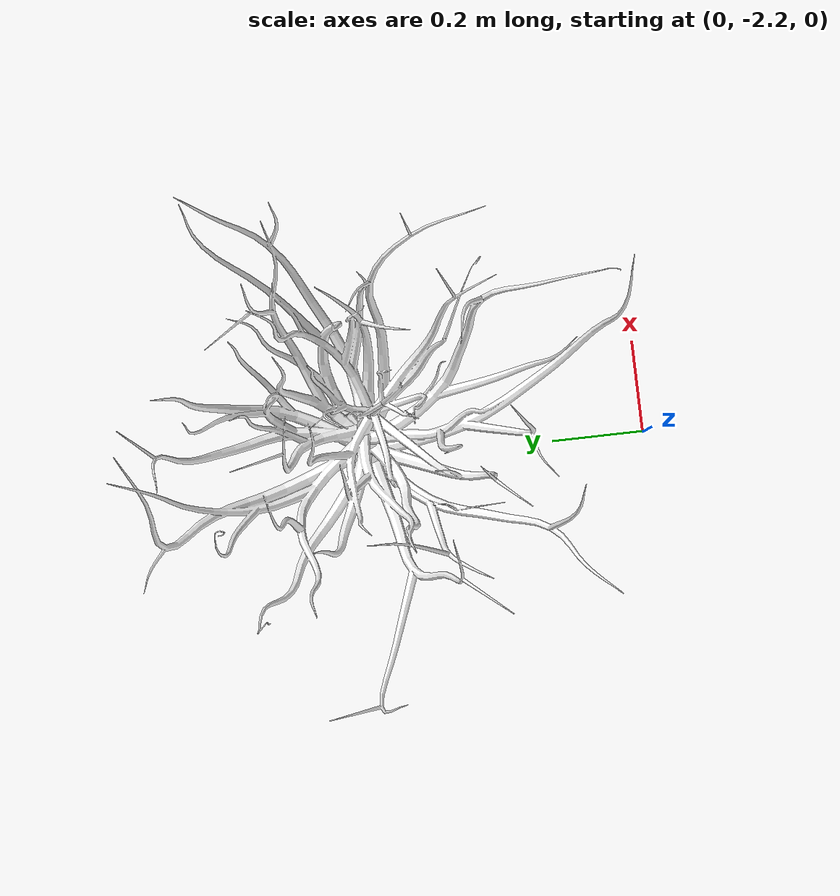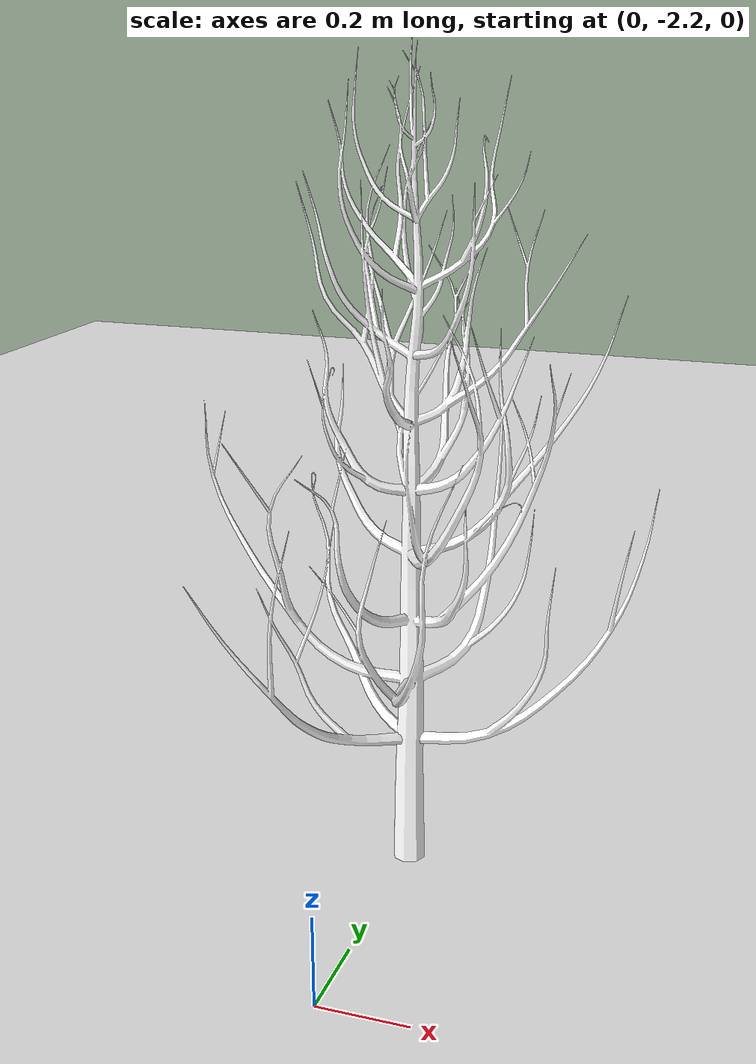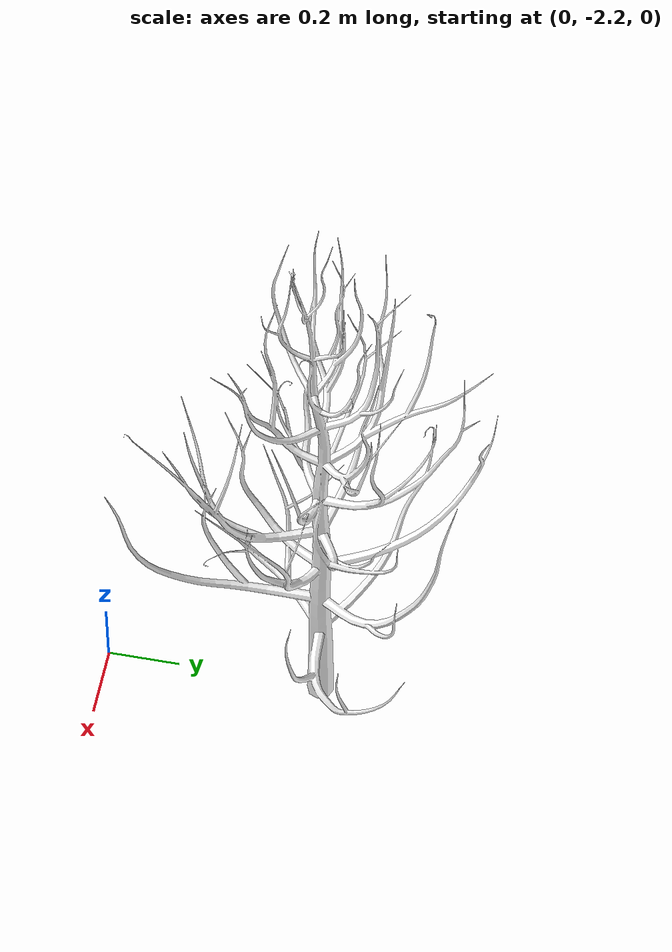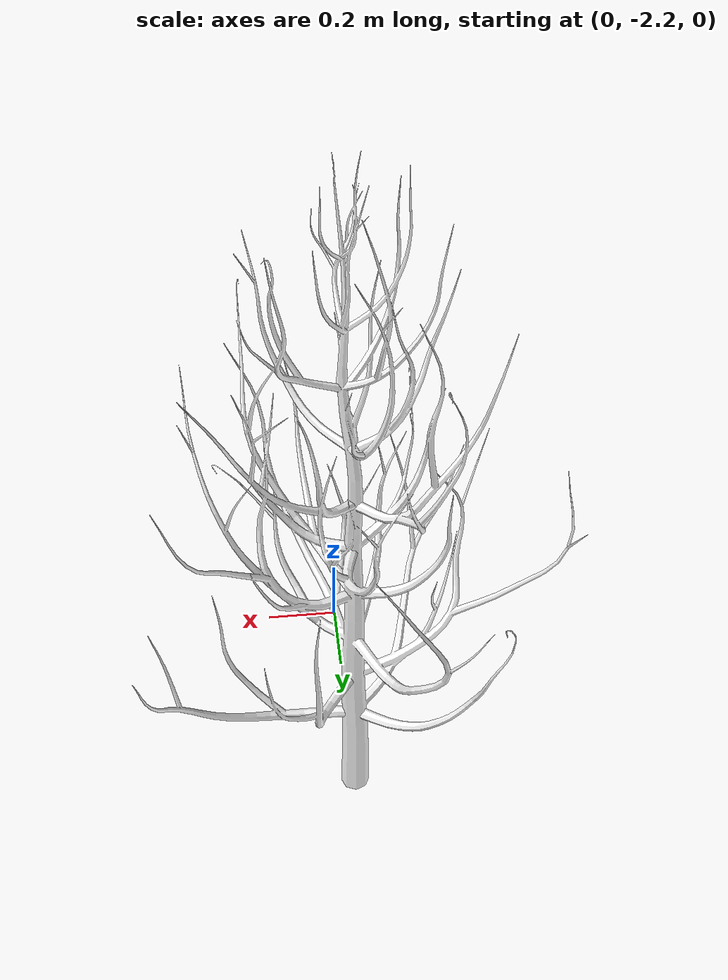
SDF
<?xml version="1.0"?>
<sdf version="1.7">
    <world name="apple_tree_2">

        <plugin filename="gz-sim-physics-system" name="gz::sim::systems::Physics"/>
        <plugin filename="gz-sim-user-commands-system" name="gz::sim::systems::UserCommands"/>
        <plugin filename="gz-sim-scene-broadcaster-system" name="gz::sim::systems::SceneBroadcaster"/>
        <plugin filename="gz-sim-contact-system" name="gz::sim::systems::Contact"/>
        <plugin filename="gz-sim-sensors-system" name="gz::sim::systems::Sensors">
            <render_engine>ogre2</render_engine>
        </plugin>

        <physics type="ode">
            <max_step_size>0.01</max_step_size>
            <real_time_factor>1</real_time_factor>
            <max_contacts>10</max_contacts>
            <real_time_update_rate>1000</real_time_update_rate>
        </physics>

        <gravity>0 0 -9.8</gravity>

        <scene>
            <ambient>0.5 0.5 0.5 1</ambient>
            <background>0.3 0.7 0.9 1</background>
            <grid>false</grid>
            <sky>
                <clouds>
                    <speed>12</speed>
                </clouds>
            </sky>
            <shadows>false</shadows>
        </scene>

        <light name='sun' type='directional'>
            <pose>0 0 10 0 -0 0</pose>
            <cast_shadows>false</cast_shadows>
            <intensity>1</intensity>
            <direction>-0.5 0.1 -0.9</direction>
            <diffuse>0.8 0.8 0.8 1</diffuse>
            <specular>0.2 0.2 0.2 1</specular>
            <attenuation>
                <range>1000</range>
                <linear>0.01</linear>
                <constant>0.90000000000000002</constant>
                <quadratic>0.001</quadratic>
            </attenuation>
            <spot>
                <inner_angle>0</inner_angle>
                <outer_angle>0</outer_angle>
                <falloff>0</falloff>
            </spot>
        </light>

        <include>
            <uri>model://apple_tree_ground</uri>
            <name>apple_tree_ground</name>
            <pose>0 0 0 0 0 -1.57</pose>
        </include>

        <!-- Apple tree with crook canker disease -->
        <include>
            <uri>model://apple_tree_2</uri>
            <name>apple_tree_2</name>
            <pose>0 -1.6 0 0 0 -1.57</pose>
        </include>
    </world>
</sdf>

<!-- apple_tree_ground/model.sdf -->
<sdf version="1.7">
    <model name="apple_tree_ground">
        <static>true</static>
        <link name="ground">
            <visual name="ground">
                <geometry>
                    <mesh>
                        <uri>model://apple_tree_1/meshes/ground.obj</uri>
                    </mesh>
                </geometry>
                <material>
                    <ambient>0.600 0.600 0.600 1</ambient>
                    <diffuse>1.000 1.000 1.000 1</diffuse>
                    <specular>0.1 0.1 0.1 1</specular>
                    <emissive>0 0 0 1</emissive>
                    <pbr>
                        <metal>
                            <albedo_map>model://apple_tree_1/materials/dirt.jpg</albedo_map>
                            <roughness>0.7</roughness>
                            <metalness>0.0</metalness>
                        </metal>
                    </pbr>
                </material>
            </visual>
            <collision name="collision">
                <geometry>
                    <mesh>
                        <uri>model://apple_tree_1/meshes/ground.obj</uri>
                    </mesh>
                </geometry>
                <surface>
                    <contact/>
                </surface>
            </collision>
        </link>
    </model>
</sdf>

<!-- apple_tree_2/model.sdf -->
<sdf version="1.7">
    <model name="apple_tree_2">
        <static>true</static>
<link name="apple_tree_2_link">

            <visual name="apple_tree_2_visual">
                <geometry>
                <mesh>
                    <uri>model://apple_tree_2/meshes/apple_tree_2.obj</uri>
                </mesh>
                </geometry>

                <material>
                    <ambient>0.6 0.6 0.6 1</ambient>
                    <diffuse>1 1 1 1</diffuse>
                    <specular>0.1 0.1 0.1 1</specular>
                    <emissive>0 0 0 1</emissive>

                    <pbr>
                        <metal>
                        <!-- Base color -->
                        <albedo_map>model://apple_tree_2/materials/tree_basecolor_baked.png</albedo_map>

                        <!-- Normal map -->
                        <normal_map>model://apple_tree_2/materials/tree_normal_baked.png</normal_map>

                        <!-- Roughness map (preferred) -->
                        <roughness_map>model://apple_tree_2/materials/tree_roughness_baked.png</roughness_map>

                        <!-- For bark -->
                        <metalness>0.0</metalness>

                        <!-- Optional: if your roughness map is missing/ignored, fallback constant -->
                        </metal>
                    </pbr>
                </material>

            </visual>

            <collision name="apple_tree_2_collision">
                <geometry>
                    <mesh>
                        <uri>model://apple_tree_2/meshes/apple_tree_2.obj</uri>
                    </mesh>
                </geometry>
                <surface>
                <contact>
                    <collide_without_contact>true</collide_without_contact>
                    <collide_bitmask>0x00</collide_bitmask>
                </contact>
                </surface>
            </collision>

        </link>
    </model>
</sdf>
